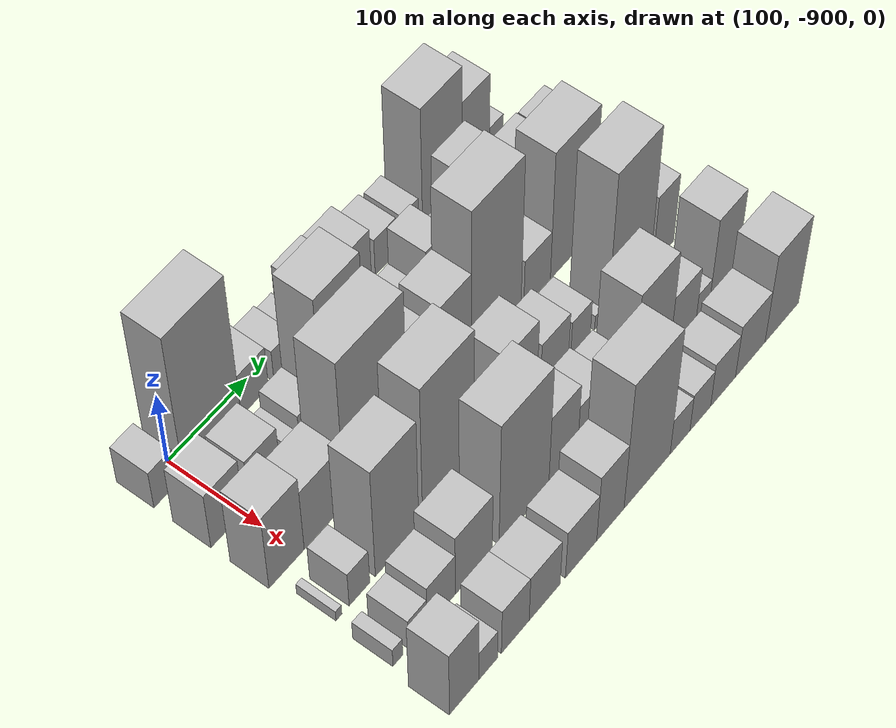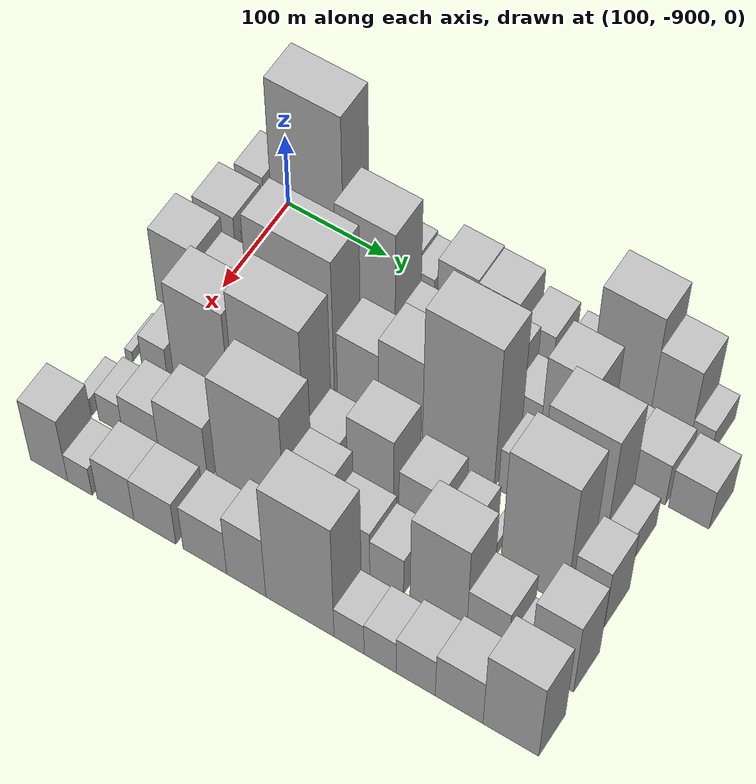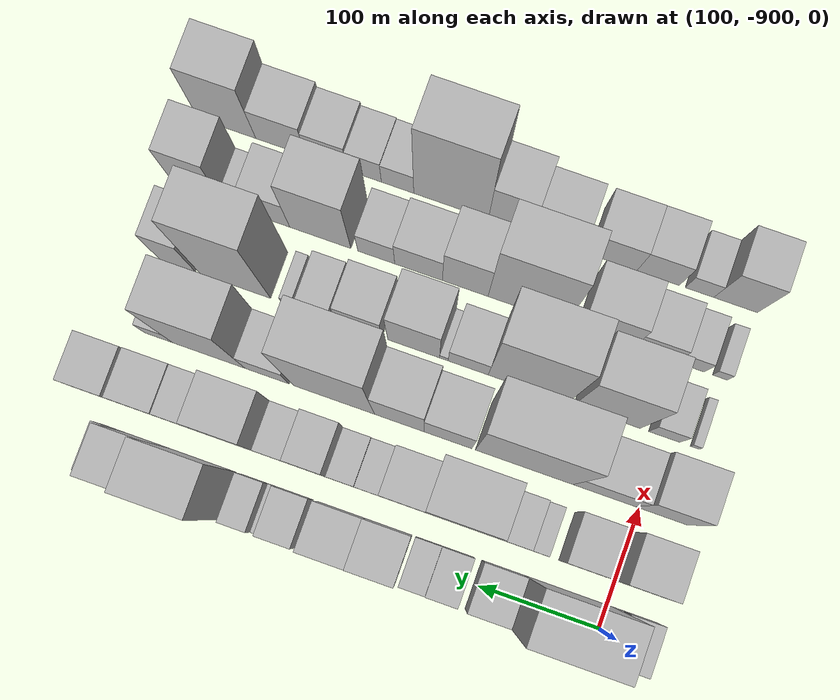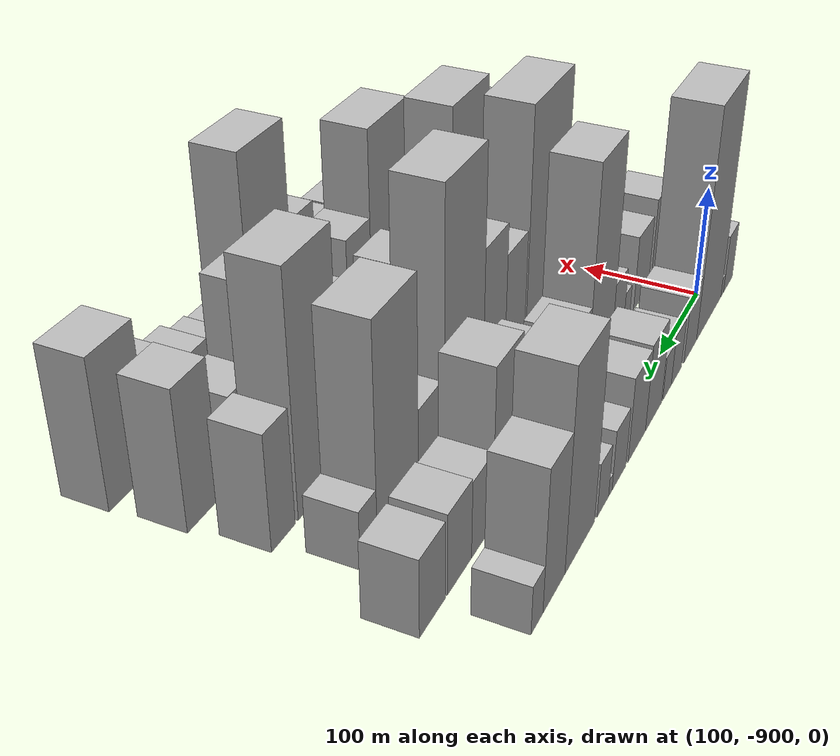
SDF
<sdf version="1.6">
 <world name="default">
  <model name="building_1">
   <static>1</static>
   <pose>100.0000 -925.8570 0 0.000000 0.000000 0.000000</pose>
   <link name="link">
    <pose>0 0 27.00 0 0 0</pose>
    <collision name="collision"><geometry><box><size>40.0000 28.2860 54.0000</size></box></geometry></collision>
    <visual name="visual">
     <cast_shadows>0</cast_shadows>
     <geometry><box><size>40.0000 28.2860 54.0000</size></box></geometry>
     <material>
      <script>
       <uri>model://HANNAS_wall/materials/scripts</uri>
       <uri>model://HANNAS_wall/materials/textures</uri>
       <name>vrc/HANNAS_wall</name>
      </script>
     </material>
    </visual>
   </link>
  </model>
  <model name="building_2">
   <static>1</static>
   <pose>100.0000 -907.5937 0 0.000000 0.000000 0.000000</pose>
   <link name="link">
    <pose>0 0 9.00 0 0 0</pose>
    <collision name="collision"><geometry><box><size>40.0000 8.2405 18.0000</size></box></geometry></collision>
    <visual name="visual">
     <cast_shadows>0</cast_shadows>
     <geometry><box><size>40.0000 8.2405 18.0000</size></box></geometry>
     <material>
      <script>
       <uri>model://HANNAS_wall/materials/scripts</uri>
       <uri>model://HANNAS_wall/materials/textures</uri>
       <name>vrc/HANNAS_wall</name>
      </script>
     </material>
    </visual>
   </link>
  </model>
  <model name="building_3">
   <static>1</static>
   <pose>100.0000 -867.1796 0 0.000000 0.000000 0.000000</pose>
   <link name="link">
    <pose>0 0 102.00 0 0 0</pose>
    <collision name="collision"><geometry><box><size>40.0000 72.5878 204.0000</size></box></geometry></collision>
    <visual name="visual">
     <cast_shadows>0</cast_shadows>
     <geometry><box><size>40.0000 72.5878 204.0000</size></box></geometry>
     <material>
      <script>
       <uri>model://HANNAS_wall/materials/scripts</uri>
       <uri>model://HANNAS_wall/materials/textures</uri>
       <name>vrc/HANNAS_wall</name>
      </script>
     </material>
    </visual>
   </link>
  </model>
  <model name="building_4">
   <static>1</static>
   <pose>100.0000 -813.3753 0 0.000000 0.000000 0.000000</pose>
   <link name="link">
    <pose>0 0 30.00 0 0 0</pose>
    <collision name="collision"><geometry><box><size>40.0000 35.0207 60.0000</size></box></geometry></collision>
    <visual name="visual">
     <cast_shadows>0</cast_shadows>
     <geometry><box><size>40.0000 35.0207 60.0000</size></box></geometry>
     <material>
      <script>
       <uri>model://HANNAS_wall/materials/scripts</uri>
       <uri>model://HANNAS_wall/materials/textures</uri>
       <name>vrc/HANNAS_wall</name>
      </script>
     </material>
    </visual>
   </link>
  </model>
  <model name="building_5">
   <static>1</static>
   <pose>100.0000 -775.6763 0 0.000000 0.000000 0.000000</pose>
   <link name="link">
    <pose>0 0 22.50 0 0 0</pose>
    <collision name="collision"><geometry><box><size>40.0000 26.3772 45.0000</size></box></geometry></collision>
    <visual name="visual">
     <cast_shadows>0</cast_shadows>
     <geometry><box><size>40.0000 26.3772 45.0000</size></box></geometry>
     <material>
      <script>
       <uri>model://HANNAS_wall/materials/scripts</uri>
       <uri>model://HANNAS_wall/materials/textures</uri>
       <name>vrc/HANNAS_wall</name>
      </script>
     </material>
    </visual>
   </link>
  </model>
  <model name="building_6">
   <static>1</static>
   <pose>100.0000 -751.6416 0 0.000000 0.000000 0.000000</pose>
   <link name="link">
    <pose>0 0 19.50 0 0 0</pose>
    <collision name="collision"><geometry><box><size>40.0000 21.6923 39.0000</size></box></geometry></collision>
    <visual name="visual">
     <cast_shadows>0</cast_shadows>
     <geometry><box><size>40.0000 21.6923 39.0000</size></box></geometry>
     <material>
      <script>
       <uri>model://HANNAS_wall/materials/scripts</uri>
       <uri>model://HANNAS_wall/materials/textures</uri>
       <name>vrc/HANNAS_wall</name>
      </script>
     </material>
    </visual>
   </link>
  </model>
  <model name="building_7">
   <static>1</static>
   <pose>100.0000 -718.3860 0 0.000000 0.000000 0.000000</pose>
   <link name="link">
    <pose>0 0 37.50 0 0 0</pose>
    <collision name="collision"><geometry><box><size>40.0000 38.8188 75.0000</size></box></geometry></collision>
    <visual name="visual">
     <cast_shadows>0</cast_shadows>
     <geometry><box><size>40.0000 38.8188 75.0000</size></box></geometry>
     <material>
      <script>
       <uri>model://HANNAS_wall/materials/scripts</uri>
       <uri>model://HANNAS_wall/materials/textures</uri>
       <name>vrc/HANNAS_wall</name>
      </script>
     </material>
    </visual>
   </link>
  </model>
  <model name="building_8">
   <static>1</static>
   <pose>100.0000 -679.2799 0 0.000000 0.000000 0.000000</pose>
   <link name="link">
    <pose>0 0 36.00 0 0 0</pose>
    <collision name="collision"><geometry><box><size>40.0000 39.3933 72.0000</size></box></geometry></collision>
    <visual name="visual">
     <cast_shadows>0</cast_shadows>
     <geometry><box><size>40.0000 39.3933 72.0000</size></box></geometry>
     <material>
      <script>
       <uri>model://HANNAS_wall/materials/scripts</uri>
       <uri>model://HANNAS_wall/materials/textures</uri>
       <name>vrc/HANNAS_wall</name>
      </script>
     </material>
    </visual>
   </link>
  </model>
  <model name="building_9">
   <static>1</static>
   <pose>100.0000 -639.7882 0 0.000000 0.000000 0.000000</pose>
   <link name="link">
    <pose>0 0 25.50 0 0 0</pose>
    <collision name="collision"><geometry><box><size>40.0000 29.5902 51.0000</size></box></geometry></collision>
    <visual name="visual">
     <cast_shadows>0</cast_shadows>
     <geometry><box><size>40.0000 29.5902 51.0000</size></box></geometry>
     <material>
      <script>
       <uri>model://HANNAS_wall/materials/scripts</uri>
       <uri>model://HANNAS_wall/materials/textures</uri>
       <name>vrc/HANNAS_wall</name>
      </script>
     </material>
    </visual>
   </link>
  </model>
  <model name="building_10">
   <static>1</static>
   <pose>100.0000 -621.4245 0 0.000000 0.000000 0.000000</pose>
   <link name="link">
    <pose>0 0 7.50 0 0 0</pose>
    <collision name="collision"><geometry><box><size>40.0000 7.1371 15.0000</size></box></geometry></collision>
    <visual name="visual">
     <cast_shadows>0</cast_shadows>
     <geometry><box><size>40.0000 7.1371 15.0000</size></box></geometry>
     <material>
      <script>
       <uri>model://HANNAS_wall/materials/scripts</uri>
       <uri>model://HANNAS_wall/materials/textures</uri>
       <name>vrc/HANNAS_wall</name>
      </script>
     </material>
    </visual>
   </link>
  </model>
  <model name="building_11">
   <static>1</static>
   <pose>100.0000 -606.1702 0 0.000000 0.000000 0.000000</pose>
   <link name="link">
    <pose>0 0 22.50 0 0 0</pose>
    <collision name="collision"><geometry><box><size>40.0000 23.3716 45.0000</size></box></geometry></collision>
    <visual name="visual">
     <cast_shadows>0</cast_shadows>
     <geometry><box><size>40.0000 23.3716 45.0000</size></box></geometry>
     <material>
      <script>
       <uri>model://HANNAS_wall/materials/scripts</uri>
       <uri>model://HANNAS_wall/materials/textures</uri>
       <name>vrc/HANNAS_wall</name>
      </script>
     </material>
    </visual>
   </link>
  </model>
  <model name="building_12">
   <static>1</static>
   <pose>100.0000 -561.4425 0 0.000000 0.000000 0.000000</pose>
   <link name="link">
    <pose>0 0 81.00 0 0 0</pose>
    <collision name="collision"><geometry><box><size>40.0000 56.0838 162.0000</size></box></geometry></collision>
    <visual name="visual">
     <cast_shadows>0</cast_shadows>
     <geometry><box><size>40.0000 56.0838 162.0000</size></box></geometry>
     <material>
      <script>
       <uri>model://HANNAS_wall/materials/scripts</uri>
       <uri>model://HANNAS_wall/materials/textures</uri>
       <name>vrc/HANNAS_wall</name>
      </script>
     </material>
    </visual>
   </link>
  </model>
  <model name="building_13">
   <static>1</static>
   <pose>100.0000 -514.2664 0 0.000000 0.000000 0.000000</pose>
   <link name="link">
    <pose>0 0 57.00 0 0 0</pose>
    <collision name="collision"><geometry><box><size>40.0000 38.2684 114.0000</size></box></geometry></collision>
    <visual name="visual">
     <cast_shadows>0</cast_shadows>
     <geometry><box><size>40.0000 38.2684 114.0000</size></box></geometry>
     <material>
      <script>
       <uri>model://HANNAS_wall/materials/scripts</uri>
       <uri>model://HANNAS_wall/materials/textures</uri>
       <name>vrc/HANNAS_wall</name>
      </script>
     </material>
    </visual>
   </link>
  </model>
  <model name="building_14">
   <static>1</static>
   <pose>100.0000 -485.1977 0 0.000000 0.000000 0.000000</pose>
   <link name="link">
    <pose>0 0 19.50 0 0 0</pose>
    <collision name="collision"><geometry><box><size>40.0000 19.8689 39.0000</size></box></geometry></collision>
    <visual name="visual">
     <cast_shadows>0</cast_shadows>
     <geometry><box><size>40.0000 19.8689 39.0000</size></box></geometry>
     <material>
      <script>
       <uri>model://HANNAS_wall/materials/scripts</uri>
       <uri>model://HANNAS_wall/materials/textures</uri>
       <name>vrc/HANNAS_wall</name>
      </script>
     </material>
    </visual>
   </link>
  </model>
  <model name="building_53">
   <static>1</static>
   <pose>160.0000 -919.6051 0 0.000000 0.000000 0.000000</pose>
   <link name="link">
    <pose>0 0 40.50 0 0 0</pose>
    <collision name="collision"><geometry><box><size>40.0000 40.7898 81.0000</size></box></geometry></collision>
    <visual name="visual">
     <cast_shadows>0</cast_shadows>
     <geometry><box><size>40.0000 40.7898 81.0000</size></box></geometry>
     <material>
      <script>
       <uri>model://HANNAS_wall/materials/scripts</uri>
       <uri>model://HANNAS_wall/materials/textures</uri>
       <name>vrc/HANNAS_wall</name>
      </script>
     </material>
    </visual>
   </link>
  </model>
  <model name="building_54">
   <static>1</static>
   <pose>160.0000 -872.5477 0 0.000000 0.000000 0.000000</pose>
   <link name="link">
    <pose>0 0 34.50 0 0 0</pose>
    <collision name="collision"><geometry><box><size>40.0000 39.3249 69.0000</size></box></geometry></collision>
    <visual name="visual">
     <cast_shadows>0</cast_shadows>
     <geometry><box><size>40.0000 39.3249 69.0000</size></box></geometry>
     <material>
      <script>
       <uri>model://HANNAS_wall/materials/scripts</uri>
       <uri>model://HANNAS_wall/materials/textures</uri>
       <name>vrc/HANNAS_wall</name>
      </script>
     </material>
    </visual>
   </link>
  </model>
  <model name="building_55">
   <static>1</static>
   <pose>160.0000 -835.2553 0 0.000000 0.000000 0.000000</pose>
   <link name="link">
    <pose>0 0 15.00 0 0 0</pose>
    <collision name="collision"><geometry><box><size>40.0000 15.2600 30.0000</size></box></geometry></collision>
    <visual name="visual">
     <cast_shadows>0</cast_shadows>
     <geometry><box><size>40.0000 15.2600 30.0000</size></box></geometry>
     <material>
      <script>
       <uri>model://HANNAS_wall/materials/scripts</uri>
       <uri>model://HANNAS_wall/materials/textures</uri>
       <name>vrc/HANNAS_wall</name>
      </script>
     </material>
    </visual>
   </link>
  </model>
  <model name="building_56">
   <static>1</static>
   <pose>160.0000 -813.1141 0 0.000000 0.000000 0.000000</pose>
   <link name="link">
    <pose>0 0 27.00 0 0 0</pose>
    <collision name="collision"><geometry><box><size>40.0000 29.0226 54.0000</size></box></geometry></collision>
    <visual name="visual">
     <cast_shadows>0</cast_shadows>
     <geometry><box><size>40.0000 29.0226 54.0000</size></box></geometry>
     <material>
      <script>
       <uri>model://HANNAS_wall/materials/scripts</uri>
       <uri>model://HANNAS_wall/materials/textures</uri>
       <name>vrc/HANNAS_wall</name>
      </script>
     </material>
    </visual>
   </link>
  </model>
  <model name="building_57">
   <static>1</static>
   <pose>160.0000 -770.1726 0 0.000000 0.000000 0.000000</pose>
   <link name="link">
    <pose>0 0 93.00 0 0 0</pose>
    <collision name="collision"><geometry><box><size>40.0000 56.8603 186.0000</size></box></geometry></collision>
    <visual name="visual">
     <cast_shadows>0</cast_shadows>
     <geometry><box><size>40.0000 56.8603 186.0000</size></box></geometry>
     <material>
      <script>
       <uri>model://HANNAS_wall/materials/scripts</uri>
       <uri>model://HANNAS_wall/materials/textures</uri>
       <name>vrc/HANNAS_wall</name>
      </script>
     </material>
    </visual>
   </link>
  </model>
  <model name="building_58">
   <static>1</static>
   <pose>160.0000 -722.9349 0 0.000000 0.000000 0.000000</pose>
   <link name="link">
    <pose>0 0 33.00 0 0 0</pose>
    <collision name="collision"><geometry><box><size>40.0000 37.6151 66.0000</size></box></geometry></collision>
    <visual name="visual">
     <cast_shadows>0</cast_shadows>
     <geometry><box><size>40.0000 37.6151 66.0000</size></box></geometry>
     <material>
      <script>
       <uri>model://HANNAS_wall/materials/scripts</uri>
       <uri>model://HANNAS_wall/materials/textures</uri>
       <name>vrc/HANNAS_wall</name>
      </script>
     </material>
    </visual>
   </link>
  </model>
  <model name="building_59">
   <static>1</static>
   <pose>160.0000 -693.7394 0 0.000000 0.000000 0.000000</pose>
   <link name="link">
    <pose>0 0 18.00 0 0 0</pose>
    <collision name="collision"><geometry><box><size>40.0000 20.7759 36.0000</size></box></geometry></collision>
    <visual name="visual">
     <cast_shadows>0</cast_shadows>
     <geometry><box><size>40.0000 20.7759 36.0000</size></box></geometry>
     <material>
      <script>
       <uri>model://HANNAS_wall/materials/scripts</uri>
       <uri>model://HANNAS_wall/materials/textures</uri>
       <name>vrc/HANNAS_wall</name>
      </script>
     </material>
    </visual>
   </link>
  </model>
  <model name="building_60">
   <static>1</static>
   <pose>160.0000 -671.8952 0 0.000000 0.000000 0.000000</pose>
   <link name="link">
    <pose>0 0 21.00 0 0 0</pose>
    <collision name="collision"><geometry><box><size>40.0000 22.9124 42.0000</size></box></geometry></collision>
    <visual name="visual">
     <cast_shadows>0</cast_shadows>
     <geometry><box><size>40.0000 22.9124 42.0000</size></box></geometry>
     <material>
      <script>
       <uri>model://HANNAS_wall/materials/scripts</uri>
       <uri>model://HANNAS_wall/materials/textures</uri>
       <name>vrc/HANNAS_wall</name>
      </script>
     </material>
    </visual>
   </link>
  </model>
  <model name="building_61">
   <static>1</static>
   <pose>160.0000 -645.0639 0 0.000000 0.000000 0.000000</pose>
   <link name="link">
    <pose>0 0 46.50 0 0 0</pose>
    <collision name="collision"><geometry><box><size>40.0000 30.7503 93.0000</size></box></geometry></collision>
    <visual name="visual">
     <cast_shadows>0</cast_shadows>
     <geometry><box><size>40.0000 30.7503 93.0000</size></box></geometry>
     <material>
      <script>
       <uri>model://HANNAS_wall/materials/scripts</uri>
       <uri>model://HANNAS_wall/materials/textures</uri>
       <name>vrc/HANNAS_wall</name>
      </script>
     </material>
    </visual>
   </link>
  </model>
  <model name="building_62">
   <static>1</static>
   <pose>160.0000 -615.5391 0 0.000000 0.000000 0.000000</pose>
   <link name="link">
    <pose>0 0 25.50 0 0 0</pose>
    <collision name="collision"><geometry><box><size>40.0000 28.2992 51.0000</size></box></geometry></collision>
    <visual name="visual">
     <cast_shadows>0</cast_shadows>
     <geometry><box><size>40.0000 28.2992 51.0000</size></box></geometry>
     <material>
      <script>
       <uri>model://HANNAS_wall/materials/scripts</uri>
       <uri>model://HANNAS_wall/materials/textures</uri>
       <name>vrc/HANNAS_wall</name>
      </script>
     </material>
    </visual>
   </link>
  </model>
  <model name="building_63">
   <static>1</static>
   <pose>160.0000 -578.7426 0 0.000000 0.000000 0.000000</pose>
   <link name="link">
    <pose>0 0 64.50 0 0 0</pose>
    <collision name="collision"><geometry><box><size>40.0000 45.2937 129.0000</size></box></geometry></collision>
    <visual name="visual">
     <cast_shadows>0</cast_shadows>
     <geometry><box><size>40.0000 45.2937 129.0000</size></box></geometry>
     <material>
      <script>
       <uri>model://HANNAS_wall/materials/scripts</uri>
       <uri>model://HANNAS_wall/materials/textures</uri>
       <name>vrc/HANNAS_wall</name>
      </script>
     </material>
    </visual>
   </link>
  </model>
  <model name="building_64">
   <static>1</static>
   <pose>160.0000 -538.9581 0 0.000000 0.000000 0.000000</pose>
   <link name="link">
    <pose>0 0 31.50 0 0 0</pose>
    <collision name="collision"><geometry><box><size>40.0000 34.2753 63.0000</size></box></geometry></collision>
    <visual name="visual">
     <cast_shadows>0</cast_shadows>
     <geometry><box><size>40.0000 34.2753 63.0000</size></box></geometry>
     <material>
      <script>
       <uri>model://HANNAS_wall/materials/scripts</uri>
       <uri>model://HANNAS_wall/materials/textures</uri>
       <name>vrc/HANNAS_wall</name>
      </script>
     </material>
    </visual>
   </link>
  </model>
  <model name="building_65">
   <static>1</static>
   <pose>160.0000 -503.1175 0 0.000000 0.000000 0.000000</pose>
   <link name="link">
    <pose>0 0 33.00 0 0 0</pose>
    <collision name="collision"><geometry><box><size>40.0000 37.4059 66.0000</size></box></geometry></collision>
    <visual name="visual">
     <cast_shadows>0</cast_shadows>
     <geometry><box><size>40.0000 37.4059 66.0000</size></box></geometry>
     <material>
      <script>
       <uri>model://HANNAS_wall/materials/scripts</uri>
       <uri>model://HANNAS_wall/materials/textures</uri>
       <name>vrc/HANNAS_wall</name>
      </script>
     </material>
    </visual>
   </link>
  </model>
  <model name="building_66">
   <static>1</static>
   <pose>160.0000 -462.6935 0 0.000000 0.000000 0.000000</pose>
   <link name="link">
    <pose>0 0 31.50 0 0 0</pose>
    <collision name="collision"><geometry><box><size>40.0000 37.4421 63.0000</size></box></geometry></collision>
    <visual name="visual">
     <cast_shadows>0</cast_shadows>
     <geometry><box><size>40.0000 37.4421 63.0000</size></box></geometry>
     <material>
      <script>
       <uri>model://HANNAS_wall/materials/scripts</uri>
       <uri>model://HANNAS_wall/materials/textures</uri>
       <name>vrc/HANNAS_wall</name>
      </script>
     </material>
    </visual>
   </link>
  </model>
  <model name="building_101">
   <static>1</static>
   <pose>220.0000 -918.0103 0 0.000000 0.000000 0.000000</pose>
   <link name="link">
    <pose>0 0 55.50 0 0 0</pose>
    <collision name="collision"><geometry><box><size>40.0000 43.9795 111.0000</size></box></geometry></collision>
    <visual name="visual">
     <cast_shadows>0</cast_shadows>
     <geometry><box><size>40.0000 43.9795 111.0000</size></box></geometry>
     <material>
      <script>
       <uri>model://HANNAS_wall/materials/scripts</uri>
       <uri>model://HANNAS_wall/materials/textures</uri>
       <name>vrc/HANNAS_wall</name>
      </script>
     </material>
    </visual>
   </link>
  </model>
  <model name="building_102">
   <static>1</static>
   <pose>220.0000 -870.1794 0 0.000000 0.000000 0.000000</pose>
   <link name="link">
    <pose>0 0 45.00 0 0 0</pose>
    <collision name="collision"><geometry><box><size>40.0000 51.6822 90.0000</size></box></geometry></collision>
    <visual name="visual">
     <cast_shadows>0</cast_shadows>
     <geometry><box><size>40.0000 51.6822 90.0000</size></box></geometry>
     <material>
      <script>
       <uri>model://HANNAS_wall/materials/scripts</uri>
       <uri>model://HANNAS_wall/materials/textures</uri>
       <name>vrc/HANNAS_wall</name>
      </script>
     </material>
    </visual>
   </link>
  </model>
  <model name="building_103">
   <static>1</static>
   <pose>220.0000 -803.4020 0 0.000000 0.000000 0.000000</pose>
   <link name="link">
    <pose>0 0 105.00 0 0 0</pose>
    <collision name="collision"><geometry><box><size>40.0000 81.8727 210.0000</size></box></geometry></collision>
    <visual name="visual">
     <cast_shadows>0</cast_shadows>
     <geometry><box><size>40.0000 81.8727 210.0000</size></box></geometry>
     <material>
      <script>
       <uri>model://HANNAS_wall/materials/scripts</uri>
       <uri>model://HANNAS_wall/materials/textures</uri>
       <name>vrc/HANNAS_wall</name>
      </script>
     </material>
    </visual>
   </link>
  </model>
  <model name="building_104">
   <static>1</static>
   <pose>220.0000 -739.4751 0 0.000000 0.000000 0.000000</pose>
   <link name="link">
    <pose>0 0 54.00 0 0 0</pose>
    <collision name="collision"><geometry><box><size>40.0000 39.9810 108.0000</size></box></geometry></collision>
    <visual name="visual">
     <cast_shadows>0</cast_shadows>
     <geometry><box><size>40.0000 39.9810 108.0000</size></box></geometry>
     <material>
      <script>
       <uri>model://HANNAS_wall/materials/scripts</uri>
       <uri>model://HANNAS_wall/materials/textures</uri>
       <name>vrc/HANNAS_wall</name>
      </script>
     </material>
    </visual>
   </link>
  </model>
  <model name="building_105">
   <static>1</static>
   <pose>220.0000 -698.5142 0 0.000000 0.000000 0.000000</pose>
   <link name="link">
    <pose>0 0 67.50 0 0 0</pose>
    <collision name="collision"><geometry><box><size>40.0000 41.9409 135.0000</size></box></geometry></collision>
    <visual name="visual">
     <cast_shadows>0</cast_shadows>
     <geometry><box><size>40.0000 41.9409 135.0000</size></box></geometry>
     <material>
      <script>
       <uri>model://HANNAS_wall/materials/scripts</uri>
       <uri>model://HANNAS_wall/materials/textures</uri>
       <name>vrc/HANNAS_wall</name>
      </script>
     </material>
    </visual>
   </link>
  </model>
  <model name="building_106">
   <static>1</static>
   <pose>220.0000 -643.2833 0 0.000000 0.000000 0.000000</pose>
   <link name="link">
    <pose>0 0 109.50 0 0 0</pose>
    <collision name="collision"><geometry><box><size>40.0000 68.5209 219.0000</size></box></geometry></collision>
    <visual name="visual">
     <cast_shadows>0</cast_shadows>
     <geometry><box><size>40.0000 68.5209 219.0000</size></box></geometry>
     <material>
      <script>
       <uri>model://HANNAS_wall/materials/scripts</uri>
       <uri>model://HANNAS_wall/materials/textures</uri>
       <name>vrc/HANNAS_wall</name>
      </script>
     </material>
    </visual>
   </link>
  </model>
  <model name="building_107">
   <static>1</static>
   <pose>220.0000 -586.2345 0 0.000000 0.000000 0.000000</pose>
   <link name="link">
    <pose>0 0 34.50 0 0 0</pose>
    <collision name="collision"><geometry><box><size>40.0000 37.5767 69.0000</size></box></geometry></collision>
    <visual name="visual">
     <cast_shadows>0</cast_shadows>
     <geometry><box><size>40.0000 37.5767 69.0000</size></box></geometry>
     <material>
      <script>
       <uri>model://HANNAS_wall/materials/scripts</uri>
       <uri>model://HANNAS_wall/materials/textures</uri>
       <name>vrc/HANNAS_wall</name>
      </script>
     </material>
    </visual>
   </link>
  </model>
  <model name="building_108">
   <static>1</static>
   <pose>220.0000 -536.5003 0 0.000000 0.000000 0.000000</pose>
   <link name="link">
    <pose>0 0 88.50 0 0 0</pose>
    <collision name="collision"><geometry><box><size>40.0000 61.8915 177.0000</size></box></geometry></collision>
    <visual name="visual">
     <cast_shadows>0</cast_shadows>
     <geometry><box><size>40.0000 61.8915 177.0000</size></box></geometry>
     <material>
      <script>
       <uri>model://HANNAS_wall/materials/scripts</uri>
       <uri>model://HANNAS_wall/materials/textures</uri>
       <name>vrc/HANNAS_wall</name>
      </script>
     </material>
    </visual>
   </link>
  </model>
  <model name="building_109">
   <static>1</static>
   <pose>220.0000 -493.5088 0 0.000000 0.000000 0.000000</pose>
   <link name="link">
    <pose>0 0 24.00 0 0 0</pose>
    <collision name="collision"><geometry><box><size>40.0000 24.0917 48.0000</size></box></geometry></collision>
    <visual name="visual">
     <cast_shadows>0</cast_shadows>
     <geometry><box><size>40.0000 24.0917 48.0000</size></box></geometry>
     <material>
      <script>
       <uri>model://HANNAS_wall/materials/scripts</uri>
       <uri>model://HANNAS_wall/materials/textures</uri>
       <name>vrc/HANNAS_wall</name>
      </script>
     </material>
    </visual>
   </link>
  </model>
  <model name="building_144">
   <static>1</static>
   <pose>280.0000 -926.2795 0 0.000000 0.000000 0.000000</pose>
   <link name="link">
    <pose>0 0 7.50 0 0 0</pose>
    <collision name="collision"><geometry><box><size>40.0000 7.4410 15.0000</size></box></geometry></collision>
    <visual name="visual">
     <cast_shadows>0</cast_shadows>
     <geometry><box><size>40.0000 7.4410 15.0000</size></box></geometry>
     <material>
      <script>
       <uri>model://HANNAS_wall/materials/scripts</uri>
       <uri>model://HANNAS_wall/materials/textures</uri>
       <name>vrc/HANNAS_wall</name>
      </script>
     </material>
    </visual>
   </link>
  </model>
  <model name="building_145">
   <static>1</static>
   <pose>280.0000 -900.5291 0 0.000000 0.000000 0.000000</pose>
   <link name="link">
    <pose>0 0 25.50 0 0 0</pose>
    <collision name="collision"><geometry><box><size>40.0000 26.0598 51.0000</size></box></geometry></collision>
    <visual name="visual">
     <cast_shadows>0</cast_shadows>
     <geometry><box><size>40.0000 26.0598 51.0000</size></box></geometry>
     <material>
      <script>
       <uri>model://HANNAS_wall/materials/scripts</uri>
       <uri>model://HANNAS_wall/materials/textures</uri>
       <name>vrc/HANNAS_wall</name>
      </script>
     </material>
    </visual>
   </link>
  </model>
  <model name="building_146">
   <static>1</static>
   <pose>280.0000 -852.5770 0 0.000000 0.000000 0.000000</pose>
   <link name="link">
    <pose>0 0 81.00 0 0 0</pose>
    <collision name="collision"><geometry><box><size>40.0000 55.8445 162.0000</size></box></geometry></collision>
    <visual name="visual">
     <cast_shadows>0</cast_shadows>
     <geometry><box><size>40.0000 55.8445 162.0000</size></box></geometry>
     <material>
      <script>
       <uri>model://HANNAS_wall/materials/scripts</uri>
       <uri>model://HANNAS_wall/materials/textures</uri>
       <name>vrc/HANNAS_wall</name>
      </script>
     </material>
    </visual>
   </link>
  </model>
  <model name="building_147">
   <static>1</static>
   <pose>280.0000 -785.9917 0 0.000000 0.000000 0.000000</pose>
   <link name="link">
    <pose>0 0 100.50 0 0 0</pose>
    <collision name="collision"><geometry><box><size>40.0000 67.3261 201.0000</size></box></geometry></collision>
    <visual name="visual">
     <cast_shadows>0</cast_shadows>
     <geometry><box><size>40.0000 67.3261 201.0000</size></box></geometry>
     <material>
      <script>
       <uri>model://HANNAS_wall/materials/scripts</uri>
       <uri>model://HANNAS_wall/materials/textures</uri>
       <name>vrc/HANNAS_wall</name>
      </script>
     </material>
    </visual>
   </link>
  </model>
  <model name="building_148">
   <static>1</static>
   <pose>280.0000 -735.3943 0 0.000000 0.000000 0.000000</pose>
   <link name="link">
    <pose>0 0 28.50 0 0 0</pose>
    <collision name="collision"><geometry><box><size>40.0000 33.8688 57.0000</size></box></geometry></collision>
    <visual name="visual">
     <cast_shadows>0</cast_shadows>
     <geometry><box><size>40.0000 33.8688 57.0000</size></box></geometry>
     <material>
      <script>
       <uri>model://HANNAS_wall/materials/scripts</uri>
       <uri>model://HANNAS_wall/materials/textures</uri>
       <name>vrc/HANNAS_wall</name>
      </script>
     </material>
    </visual>
   </link>
  </model>
  <model name="building_149">
   <static>1</static>
   <pose>280.0000 -714.7915 0 0.000000 0.000000 0.000000</pose>
   <link name="link">
    <pose>0 0 7.50 0 0 0</pose>
    <collision name="collision"><geometry><box><size>40.0000 7.3368 15.0000</size></box></geometry></collision>
    <visual name="visual">
     <cast_shadows>0</cast_shadows>
     <geometry><box><size>40.0000 7.3368 15.0000</size></box></geometry>
     <material>
      <script>
       <uri>model://HANNAS_wall/materials/scripts</uri>
       <uri>model://HANNAS_wall/materials/textures</uri>
       <name>vrc/HANNAS_wall</name>
      </script>
     </material>
    </visual>
   </link>
  </model>
  <model name="building_150">
   <static>1</static>
   <pose>280.0000 -689.1372 0 0.000000 0.000000 0.000000</pose>
   <link name="link">
    <pose>0 0 55.50 0 0 0</pose>
    <collision name="collision"><geometry><box><size>40.0000 43.9716 111.0000</size></box></geometry></collision>
    <visual name="visual">
     <cast_shadows>0</cast_shadows>
     <geometry><box><size>40.0000 43.9716 111.0000</size></box></geometry>
     <material>
      <script>
       <uri>model://HANNAS_wall/materials/scripts</uri>
       <uri>model://HANNAS_wall/materials/textures</uri>
       <name>vrc/HANNAS_wall</name>
      </script>
     </material>
    </visual>
   </link>
  </model>
  <model name="building_151">
   <static>1</static>
   <pose>280.0000 -642.6134 0 0.000000 0.000000 0.000000</pose>
   <link name="link">
    <pose>0 0 34.50 0 0 0</pose>
    <collision name="collision"><geometry><box><size>40.0000 39.0761 69.0000</size></box></geometry></collision>
    <visual name="visual">
     <cast_shadows>0</cast_shadows>
     <geometry><box><size>40.0000 39.0761 69.0000</size></box></geometry>
     <material>
      <script>
       <uri>model://HANNAS_wall/materials/scripts</uri>
       <uri>model://HANNAS_wall/materials/textures</uri>
       <name>vrc/HANNAS_wall</name>
      </script>
     </material>
    </visual>
   </link>
  </model>
  <model name="building_152">
   <static>1</static>
   <pose>280.0000 -606.1758 0 0.000000 0.000000 0.000000</pose>
   <link name="link">
    <pose>0 0 25.50 0 0 0</pose>
    <collision name="collision"><geometry><box><size>40.0000 27.7991 51.0000</size></box></geometry></collision>
    <visual name="visual">
     <cast_shadows>0</cast_shadows>
     <geometry><box><size>40.0000 27.7991 51.0000</size></box></geometry>
     <material>
      <script>
       <uri>model://HANNAS_wall/materials/scripts</uri>
       <uri>model://HANNAS_wall/materials/textures</uri>
       <name>vrc/HANNAS_wall</name>
      </script>
     </material>
    </visual>
   </link>
  </model>
  <model name="building_153">
   <static>1</static>
   <pose>280.0000 -581.1293 0 0.000000 0.000000 0.000000</pose>
   <link name="link">
    <pose>0 0 10.50 0 0 0</pose>
    <collision name="collision"><geometry><box><size>40.0000 10.2938 21.0000</size></box></geometry></collision>
    <visual name="visual">
     <cast_shadows>0</cast_shadows>
     <geometry><box><size>40.0000 10.2938 21.0000</size></box></geometry>
     <material>
      <script>
       <uri>model://HANNAS_wall/materials/scripts</uri>
       <uri>model://HANNAS_wall/materials/textures</uri>
       <name>vrc/HANNAS_wall</name>
      </script>
     </material>
    </visual>
   </link>
  </model>
  <model name="building_154">
   <static>1</static>
   <pose>280.0000 -536.6663 0 0.000000 0.000000 0.000000</pose>
   <link name="link">
    <pose>0 0 99.00 0 0 0</pose>
    <collision name="collision"><geometry><box><size>40.0000 60.6321 198.0000</size></box></geometry></collision>
    <visual name="visual">
     <cast_shadows>0</cast_shadows>
     <geometry><box><size>40.0000 60.6321 198.0000</size></box></geometry>
     <material>
      <script>
       <uri>model://HANNAS_wall/materials/scripts</uri>
       <uri>model://HANNAS_wall/materials/textures</uri>
       <name>vrc/HANNAS_wall</name>
      </script>
     </material>
    </visual>
   </link>
  </model>
  <model name="building_155">
   <static>1</static>
   <pose>280.0000 -486.9462 0 0.000000 0.000000 0.000000</pose>
   <link name="link">
    <pose>0 0 48.00 0 0 0</pose>
    <collision name="collision"><geometry><box><size>40.0000 30.8082 96.0000</size></box></geometry></collision>
    <visual name="visual">
     <cast_shadows>0</cast_shadows>
     <geometry><box><size>40.0000 30.8082 96.0000</size></box></geometry>
     <material>
      <script>
       <uri>model://HANNAS_wall/materials/scripts</uri>
       <uri>model://HANNAS_wall/materials/textures</uri>
       <name>vrc/HANNAS_wall</name>
      </script>
     </material>
    </visual>
   </link>
  </model>
  <model name="building_191">
   <static>1</static>
   <pose>340.0000 -927.7681 0 0.000000 0.000000 0.000000</pose>
   <link name="link">
    <pose>0 0 13.50 0 0 0</pose>
    <collision name="collision"><geometry><box><size>40.0000 12.4637 27.0000</size></box></geometry></collision>
    <visual name="visual">
     <cast_shadows>0</cast_shadows>
     <geometry><box><size>40.0000 12.4637 27.0000</size></box></geometry>
     <material>
      <script>
       <uri>model://HANNAS_wall/materials/scripts</uri>
       <uri>model://HANNAS_wall/materials/textures</uri>
       <name>vrc/HANNAS_wall</name>
      </script>
     </material>
    </visual>
   </link>
  </model>
  <model name="building_192">
   <static>1</static>
   <pose>340.0000 -902.7154 0 0.000000 0.000000 0.000000</pose>
   <link name="link">
    <pose>0 0 22.50 0 0 0</pose>
    <collision name="collision"><geometry><box><size>40.0000 23.6419 45.0000</size></box></geometry></collision>
    <visual name="visual">
     <cast_shadows>0</cast_shadows>
     <geometry><box><size>40.0000 23.6419 45.0000</size></box></geometry>
     <material>
      <script>
       <uri>model://HANNAS_wall/materials/scripts</uri>
       <uri>model://HANNAS_wall/materials/textures</uri>
       <name>vrc/HANNAS_wall</name>
      </script>
     </material>
    </visual>
   </link>
  </model>
  <model name="building_193">
   <static>1</static>
   <pose>340.0000 -872.8247 0 0.000000 0.000000 0.000000</pose>
   <link name="link">
    <pose>0 0 31.50 0 0 0</pose>
    <collision name="collision"><geometry><box><size>40.0000 36.1394 63.0000</size></box></geometry></collision>
    <visual name="visual">
     <cast_shadows>0</cast_shadows>
     <geometry><box><size>40.0000 36.1394 63.0000</size></box></geometry>
     <material>
      <script>
       <uri>model://HANNAS_wall/materials/scripts</uri>
       <uri>model://HANNAS_wall/materials/textures</uri>
       <name>vrc/HANNAS_wall</name>
      </script>
     </material>
    </visual>
   </link>
  </model>
  <model name="building_194">
   <static>1</static>
   <pose>340.0000 -830.7070 0 0.000000 0.000000 0.000000</pose>
   <link name="link">
    <pose>0 0 45.00 0 0 0</pose>
    <collision name="collision"><geometry><box><size>40.0000 48.0961 90.0000</size></box></geometry></collision>
    <visual name="visual">
     <cast_shadows>0</cast_shadows>
     <geometry><box><size>40.0000 48.0961 90.0000</size></box></geometry>
     <material>
      <script>
       <uri>model://HANNAS_wall/materials/scripts</uri>
       <uri>model://HANNAS_wall/materials/textures</uri>
       <name>vrc/HANNAS_wall</name>
      </script>
     </material>
    </visual>
   </link>
  </model>
  <model name="building_195">
   <static>1</static>
   <pose>340.0000 -764.4953 0 0.000000 0.000000 0.000000</pose>
   <link name="link">
    <pose>0 0 90.00 0 0 0</pose>
    <collision name="collision"><geometry><box><size>40.0000 66.3273 180.0000</size></box></geometry></collision>
    <visual name="visual">
     <cast_shadows>0</cast_shadows>
     <geometry><box><size>40.0000 66.3273 180.0000</size></box></geometry>
     <material>
      <script>
       <uri>model://HANNAS_wall/materials/scripts</uri>
       <uri>model://HANNAS_wall/materials/textures</uri>
       <name>vrc/HANNAS_wall</name>
      </script>
     </material>
    </visual>
   </link>
  </model>
  <model name="building_196">
   <static>1</static>
   <pose>340.0000 -711.8274 0 0.000000 0.000000 0.000000</pose>
   <link name="link">
    <pose>0 0 52.50 0 0 0</pose>
    <collision name="collision"><geometry><box><size>40.0000 39.0085 105.0000</size></box></geometry></collision>
    <visual name="visual">
     <cast_shadows>0</cast_shadows>
     <geometry><box><size>40.0000 39.0085 105.0000</size></box></geometry>
     <material>
      <script>
       <uri>model://HANNAS_wall/materials/scripts</uri>
       <uri>model://HANNAS_wall/materials/textures</uri>
       <name>vrc/HANNAS_wall</name>
      </script>
     </material>
    </visual>
   </link>
  </model>
  <model name="building_197">
   <static>1</static>
   <pose>340.0000 -671.9753 0 0.000000 0.000000 0.000000</pose>
   <link name="link">
    <pose>0 0 36.00 0 0 0</pose>
    <collision name="collision"><geometry><box><size>40.0000 40.6958 72.0000</size></box></geometry></collision>
    <visual name="visual">
     <cast_shadows>0</cast_shadows>
     <geometry><box><size>40.0000 40.6958 72.0000</size></box></geometry>
     <material>
      <script>
       <uri>model://HANNAS_wall/materials/scripts</uri>
       <uri>model://HANNAS_wall/materials/textures</uri>
       <name>vrc/HANNAS_wall</name>
      </script>
     </material>
    </visual>
   </link>
  </model>
  <model name="building_198">
   <static>1</static>
   <pose>340.0000 -635.8047 0 0.000000 0.000000 0.000000</pose>
   <link name="link">
    <pose>0 0 30.00 0 0 0</pose>
    <collision name="collision"><geometry><box><size>40.0000 31.6452 60.0000</size></box></geometry></collision>
    <visual name="visual">
     <cast_shadows>0</cast_shadows>
     <geometry><box><size>40.0000 31.6452 60.0000</size></box></geometry>
     <material>
      <script>
       <uri>model://HANNAS_wall/materials/scripts</uri>
       <uri>model://HANNAS_wall/materials/textures</uri>
       <name>vrc/HANNAS_wall</name>
      </script>
     </material>
    </visual>
   </link>
  </model>
  <model name="building_199">
   <static>1</static>
   <pose>340.0000 -587.6696 0 0.000000 0.000000 0.000000</pose>
   <link name="link">
    <pose>0 0 69.00 0 0 0</pose>
    <collision name="collision"><geometry><box><size>40.0000 52.6250 138.0000</size></box></geometry></collision>
    <visual name="visual">
     <cast_shadows>0</cast_shadows>
     <geometry><box><size>40.0000 52.6250 138.0000</size></box></geometry>
     <material>
      <script>
       <uri>model://HANNAS_wall/materials/scripts</uri>
       <uri>model://HANNAS_wall/materials/textures</uri>
       <name>vrc/HANNAS_wall</name>
      </script>
     </material>
    </visual>
   </link>
  </model>
  <model name="building_200">
   <static>1</static>
   <pose>340.0000 -542.4244 0 0.000000 0.000000 0.000000</pose>
   <link name="link">
    <pose>0 0 36.00 0 0 0</pose>
    <collision name="collision"><geometry><box><size>40.0000 37.8654 72.0000</size></box></geometry></collision>
    <visual name="visual">
     <cast_shadows>0</cast_shadows>
     <geometry><box><size>40.0000 37.8654 72.0000</size></box></geometry>
     <material>
      <script>
       <uri>model://HANNAS_wall/materials/scripts</uri>
       <uri>model://HANNAS_wall/materials/textures</uri>
       <name>vrc/HANNAS_wall</name>
      </script>
     </material>
    </visual>
   </link>
  </model>
  <model name="building_201">
   <static>1</static>
   <pose>340.0000 -513.7287 0 0.000000 0.000000 0.000000</pose>
   <link name="link">
    <pose>0 0 16.50 0 0 0</pose>
    <collision name="collision"><geometry><box><size>40.0000 19.5259 33.0000</size></box></geometry></collision>
    <visual name="visual">
     <cast_shadows>0</cast_shadows>
     <geometry><box><size>40.0000 19.5259 33.0000</size></box></geometry>
     <material>
      <script>
       <uri>model://HANNAS_wall/materials/scripts</uri>
       <uri>model://HANNAS_wall/materials/textures</uri>
       <name>vrc/HANNAS_wall</name>
      </script>
     </material>
    </visual>
   </link>
  </model>
  <model name="building_202">
   <static>1</static>
   <pose>340.0000 -483.9883 0 0.000000 0.000000 0.000000</pose>
   <link name="link">
    <pose>0 0 58.50 0 0 0</pose>
    <collision name="collision"><geometry><box><size>40.0000 39.9549 117.0000</size></box></geometry></collision>
    <visual name="visual">
     <cast_shadows>0</cast_shadows>
     <geometry><box><size>40.0000 39.9549 117.0000</size></box></geometry>
     <material>
      <script>
       <uri>model://HANNAS_wall/materials/scripts</uri>
       <uri>model://HANNAS_wall/materials/textures</uri>
       <name>vrc/HANNAS_wall</name>
      </script>
     </material>
    </visual>
   </link>
  </model>
  <model name="building_239">
   <static>1</static>
   <pose>400.0000 -921.4915 0 0.000000 0.000000 0.000000</pose>
   <link name="link">
    <pose>0 0 49.50 0 0 0</pose>
    <collision name="collision"><geometry><box><size>40.0000 37.0170 99.0000</size></box></geometry></collision>
    <visual name="visual">
     <cast_shadows>0</cast_shadows>
     <geometry><box><size>40.0000 37.0170 99.0000</size></box></geometry>
     <material>
      <script>
       <uri>model://HANNAS_wall/materials/scripts</uri>
       <uri>model://HANNAS_wall/materials/textures</uri>
       <name>vrc/HANNAS_wall</name>
      </script>
     </material>
    </visual>
   </link>
  </model>
  <model name="building_240">
   <static>1</static>
   <pose>400.0000 -890.9009 0 0.000000 0.000000 0.000000</pose>
   <link name="link">
    <pose>0 0 22.50 0 0 0</pose>
    <collision name="collision"><geometry><box><size>40.0000 24.1642 45.0000</size></box></geometry></collision>
    <visual name="visual">
     <cast_shadows>0</cast_shadows>
     <geometry><box><size>40.0000 24.1642 45.0000</size></box></geometry>
     <material>
      <script>
       <uri>model://HANNAS_wall/materials/scripts</uri>
       <uri>model://HANNAS_wall/materials/textures</uri>
       <name>vrc/HANNAS_wall</name>
      </script>
     </material>
    </visual>
   </link>
  </model>
  <model name="building_241">
   <static>1</static>
   <pose>400.0000 -855.8085 0 0.000000 0.000000 0.000000</pose>
   <link name="link">
    <pose>0 0 34.50 0 0 0</pose>
    <collision name="collision"><geometry><box><size>40.0000 36.0205 69.0000</size></box></geometry></collision>
    <visual name="visual">
     <cast_shadows>0</cast_shadows>
     <geometry><box><size>40.0000 36.0205 69.0000</size></box></geometry>
     <material>
      <script>
       <uri>model://HANNAS_wall/materials/scripts</uri>
       <uri>model://HANNAS_wall/materials/textures</uri>
       <name>vrc/HANNAS_wall</name>
      </script>
     </material>
    </visual>
   </link>
  </model>
  <model name="building_242">
   <static>1</static>
   <pose>400.0000 -817.3766 0 0.000000 0.000000 0.000000</pose>
   <link name="link">
    <pose>0 0 34.50 0 0 0</pose>
    <collision name="collision"><geometry><box><size>40.0000 40.8433 69.0000</size></box></geometry></collision>
    <visual name="visual">
     <cast_shadows>0</cast_shadows>
     <geometry><box><size>40.0000 40.8433 69.0000</size></box></geometry>
     <material>
      <script>
       <uri>model://HANNAS_wall/materials/scripts</uri>
       <uri>model://HANNAS_wall/materials/textures</uri>
       <name>vrc/HANNAS_wall</name>
      </script>
     </material>
    </visual>
   </link>
  </model>
  <model name="building_243">
   <static>1</static>
   <pose>400.0000 -768.9400 0 0.000000 0.000000 0.000000</pose>
   <link name="link">
    <pose>0 0 36.00 0 0 0</pose>
    <collision name="collision"><geometry><box><size>40.0000 42.0298 72.0000</size></box></geometry></collision>
    <visual name="visual">
     <cast_shadows>0</cast_shadows>
     <geometry><box><size>40.0000 42.0298 72.0000</size></box></geometry>
     <material>
      <script>
       <uri>model://HANNAS_wall/materials/scripts</uri>
       <uri>model://HANNAS_wall/materials/textures</uri>
       <name>vrc/HANNAS_wall</name>
      </script>
     </material>
    </visual>
   </link>
  </model>
  <model name="building_244">
   <static>1</static>
   <pose>400.0000 -729.3218 0 0.000000 0.000000 0.000000</pose>
   <link name="link">
    <pose>0 0 49.50 0 0 0</pose>
    <collision name="collision"><geometry><box><size>40.0000 37.2068 99.0000</size></box></geometry></collision>
    <visual name="visual">
     <cast_shadows>0</cast_shadows>
     <geometry><box><size>40.0000 37.2068 99.0000</size></box></geometry>
     <material>
      <script>
       <uri>model://HANNAS_wall/materials/scripts</uri>
       <uri>model://HANNAS_wall/materials/textures</uri>
       <name>vrc/HANNAS_wall</name>
      </script>
     </material>
    </visual>
   </link>
  </model>
  <model name="building_245">
   <static>1</static>
   <pose>400.0000 -678.6236 0 0.000000 0.000000 0.000000</pose>
   <link name="link">
    <pose>0 0 93.00 0 0 0</pose>
    <collision name="collision"><geometry><box><size>40.0000 64.1897 186.0000</size></box></geometry></collision>
    <visual name="visual">
     <cast_shadows>0</cast_shadows>
     <geometry><box><size>40.0000 64.1897 186.0000</size></box></geometry>
     <material>
      <script>
       <uri>model://HANNAS_wall/materials/scripts</uri>
       <uri>model://HANNAS_wall/materials/textures</uri>
       <name>vrc/HANNAS_wall</name>
      </script>
     </material>
    </visual>
   </link>
  </model>
  <model name="building_246">
   <static>1</static>
   <pose>400.0000 -632.5641 0 0.000000 0.000000 0.000000</pose>
   <link name="link">
    <pose>0 0 25.50 0 0 0</pose>
    <collision name="collision"><geometry><box><size>40.0000 27.9293 51.0000</size></box></geometry></collision>
    <visual name="visual">
     <cast_shadows>0</cast_shadows>
     <geometry><box><size>40.0000 27.9293 51.0000</size></box></geometry>
     <material>
      <script>
       <uri>model://HANNAS_wall/materials/scripts</uri>
       <uri>model://HANNAS_wall/materials/textures</uri>
       <name>vrc/HANNAS_wall</name>
      </script>
     </material>
    </visual>
   </link>
  </model>
  <model name="building_247">
   <static>1</static>
   <pose>400.0000 -603.8297 0 0.000000 0.000000 0.000000</pose>
   <link name="link">
    <pose>0 0 27.00 0 0 0</pose>
    <collision name="collision"><geometry><box><size>40.0000 29.5395 54.0000</size></box></geometry></collision>
    <visual name="visual">
     <cast_shadows>0</cast_shadows>
     <geometry><box><size>40.0000 29.5395 54.0000</size></box></geometry>
     <material>
      <script>
       <uri>model://HANNAS_wall/materials/scripts</uri>
       <uri>model://HANNAS_wall/materials/textures</uri>
       <name>vrc/HANNAS_wall</name>
      </script>
     </material>
    </visual>
   </link>
  </model>
  <model name="building_248">
   <static>1</static>
   <pose>400.0000 -571.0794 0 0.000000 0.000000 0.000000</pose>
   <link name="link">
    <pose>0 0 31.50 0 0 0</pose>
    <collision name="collision"><geometry><box><size>40.0000 35.9611 63.0000</size></box></geometry></collision>
    <visual name="visual">
     <cast_shadows>0</cast_shadows>
     <geometry><box><size>40.0000 35.9611 63.0000</size></box></geometry>
     <material>
      <script>
       <uri>model://HANNAS_wall/materials/scripts</uri>
       <uri>model://HANNAS_wall/materials/textures</uri>
       <name>vrc/HANNAS_wall</name>
      </script>
     </material>
    </visual>
   </link>
  </model>
  <model name="building_249">
   <static>1</static>
   <pose>400.0000 -531.4334 0 0.000000 0.000000 0.000000</pose>
   <link name="link">
    <pose>0 0 37.50 0 0 0</pose>
    <collision name="collision"><geometry><box><size>40.0000 43.3308 75.0000</size></box></geometry></collision>
    <visual name="visual">
     <cast_shadows>0</cast_shadows>
     <geometry><box><size>40.0000 43.3308 75.0000</size></box></geometry>
     <material>
      <script>
       <uri>model://HANNAS_wall/materials/scripts</uri>
       <uri>model://HANNAS_wall/materials/textures</uri>
       <name>vrc/HANNAS_wall</name>
      </script>
     </material>
    </visual>
   </link>
  </model>
  <model name="building_250">
   <static>1</static>
   <pose>400.0000 -484.6938 0 0.000000 0.000000 0.000000</pose>
   <link name="link">
    <pose>0 0 63.00 0 0 0</pose>
    <collision name="collision"><geometry><box><size>40.0000 50.1484 126.0000</size></box></geometry></collision>
    <visual name="visual">
     <cast_shadows>0</cast_shadows>
     <geometry><box><size>40.0000 50.1484 126.0000</size></box></geometry>
     <material>
      <script>
       <uri>model://HANNAS_wall/materials/scripts</uri>
       <uri>model://HANNAS_wall/materials/textures</uri>
       <name>vrc/HANNAS_wall</name>
      </script>
     </material>
    </visual>
   </link>
  </model>
 </world>
</sdf>
